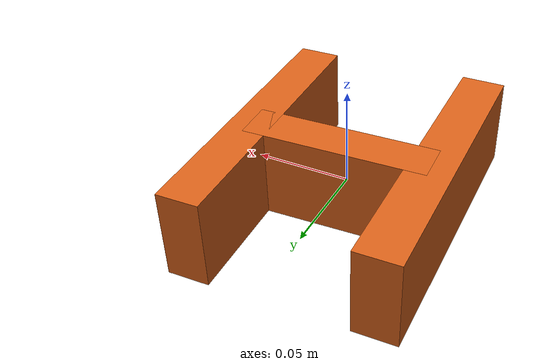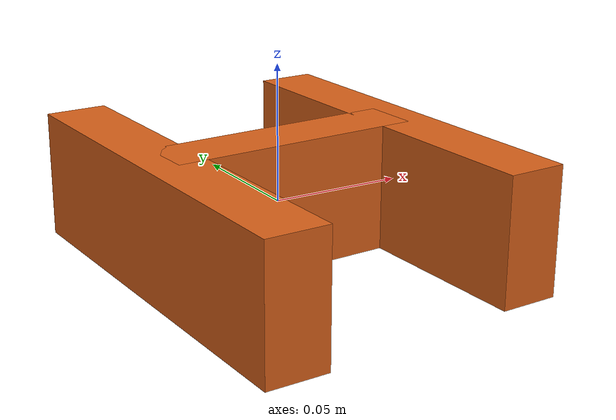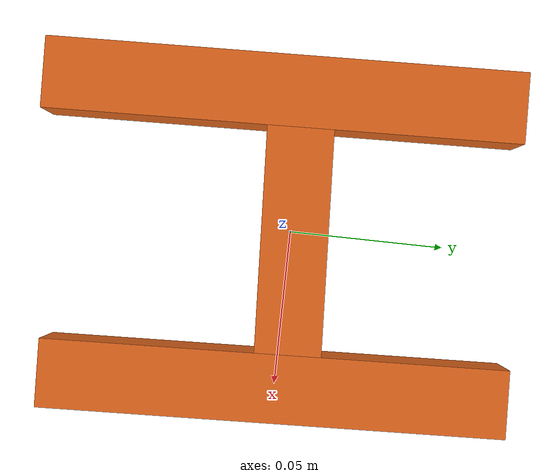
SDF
<?xml version="1.0"?>
<sdf version="1.7">
  <model name="H_shape_texture">
    <link name="H_shape_texture">
      <inertial>
        <pose>0.001690 -0.002389 0.000080 0 0 0</pose>
        <mass>0.05</mass>
        <inertia>
          <ixx>8.54775501e-05</ixx>
          <iyy>0.000107212646</iyy>
          <izz>0.000173998143</izz>
          <ixy>-3.3402333e-06</ixy>
          <ixz>-6.75836659e-09</ixz>
          <iyz>9.55699436e-09</iyz>
        </inertia>
      </inertial>
      <visual name="box_0">
        <pose>0.050540 -0.000460 0.000080 0 0 -1.533550</pose>
        <geometry>
          <box><size>0.150500 0.022050 0.047360</size></box>
        </geometry>
        <material>
          <diffuse>0.85 0.38 0.1 1</diffuse>
        </material>
      </visual>
      <collision name="box_0_volume">
        <pose>0.050540 -0.000460 0.000080 0 0 -1.533550</pose>
        <geometry>
          <box><size>0.150500 0.022050 0.047360</size></box>
        </geometry>
        <drake:proximity_properties>
          <drake:compliant_hydroelastic/>
          <drake:hydroelastic_modulus> 3.0e7 </drake:hydroelastic_modulus>
          <drake:mesh_resolution_hint> 0.02 </drake:mesh_resolution_hint>
          <drake:hunt_crossley_dissipation>10</drake:hunt_crossley_dissipation>
          <drake:mu_dynamic>0.3</drake:mu_dynamic>
        </drake:proximity_properties>
      </collision>
      <visual name="box_1">
        <pose>-0.044710 -0.006460 0.000080 0 0 1.600800</pose>
        <geometry>
          <box><size>0.155000 0.023000 0.047360</size></box>
        </geometry>
        <material>
          <diffuse>0.85 0.38 0.1 1</diffuse>
        </material>
      </visual>
      <collision name="box_1_volume">
        <pose>-0.044710 -0.006460 0.000080 0 0 1.600800</pose>
        <geometry>
          <box><size>0.155000 0.023000 0.047360</size></box>
        </geometry>
        <drake:proximity_properties>
          <drake:compliant_hydroelastic/>
          <drake:hydroelastic_modulus> 3.0e7 </drake:hydroelastic_modulus>
          <drake:mesh_resolution_hint> 0.02 </drake:mesh_resolution_hint>
          <drake:hunt_crossley_dissipation>10</drake:hunt_crossley_dissipation>
          <drake:mu_dynamic>0.3</drake:mu_dynamic>
        </drake:proximity_properties>
      </collision>
      <visual name="box_2">
        <pose>0.003290 0.001540 0.000080 0 0 -1.522800</pose>
        <geometry>
          <box><size>0.021500 0.096000 0.047360</size></box>
        </geometry>
        <material>
          <diffuse>0.85 0.38 0.1 1</diffuse>
        </material>
      </visual>
      <collision name="box_2_volume">
        <pose>0.003290 0.001540 0.000080 0 0 -1.522800</pose>
        <geometry>
          <box><size>0.021500 0.096000 0.047360</size></box>
        </geometry>
        <drake:proximity_properties>
          <drake:compliant_hydroelastic/>
          <drake:hydroelastic_modulus> 3.0e7 </drake:hydroelastic_modulus>
          <drake:mesh_resolution_hint> 0.02 </drake:mesh_resolution_hint>
          <drake:hunt_crossley_dissipation>10</drake:hunt_crossley_dissipation>
          <drake:mu_dynamic>0.3</drake:mu_dynamic>
        </drake:proximity_properties>
      </collision>
    </link>
  </model>
</sdf>
